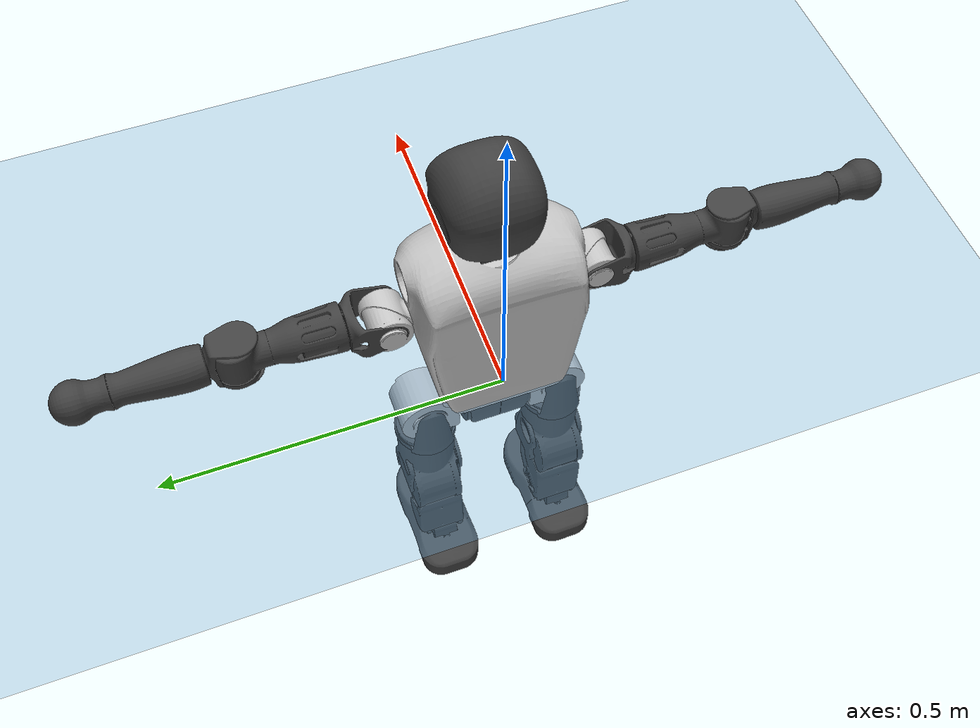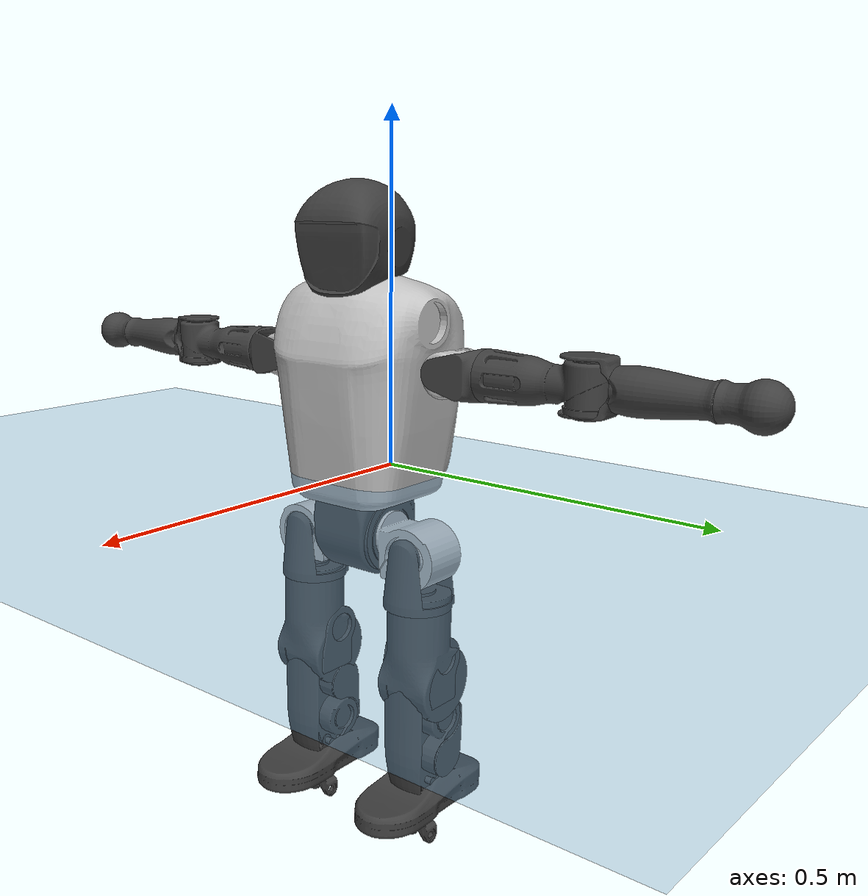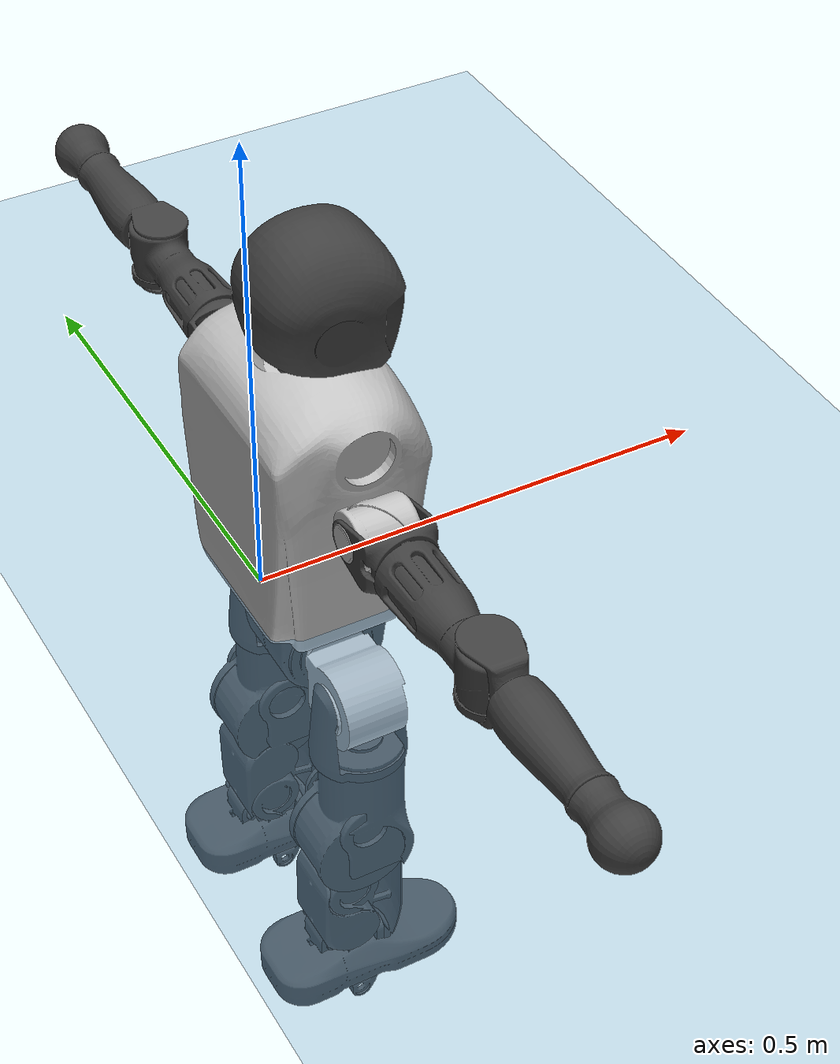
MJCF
<mujoco model="T1">
  <compiler angle="radian" assetdir="assets" balanceinertia="true" inertiafromgeom="false"/>

  <option timestep="0.005" density="1.2" viscosity="2e-05"/>

  <size nkey="1"/>

  <visual>
    <quality shadowsize="8192"/>
    <map shadowclip="0.5"/>
  </visual>

  <default>
    <default class="/">
      <joint armature="0.01" damping="0.01" frictionloss="0.1"/>
      <geom contype="0" conaffinity="0" group="1" solref="-1000 -80"/>
      <site size="0.01 0.005 0.005" group="5"/>
      <general forcelimited="true" biastype="affine" gainprm="25" biasprm="0 -25 -0.6"/>
      <default class="t1">
        <geom rgba="0.25 0.25 0.25 1"/>
        <default class="visual">
          <geom type="mesh" group="2"/>
        </default>
        <default class="collision">
          <geom group="3"/>
        </default>
        <default class="foot">
          <geom size="0.1115 0.05 0.015" type="box" condim="6" group="4" priority="1" solimp="0.015 1 0.015"/>
        </default>
        <default class="reward_collision_sphere">
          <geom group="5" rgba="1 0 0 1"/>
        </default>
      </default>
    </default>
  </default>

  <asset>
    <texture type="skybox" colorspace="auto" name="//unnamed_texture_0" builtin="gradient" rgb1="0.95 0.95 0.95" rgb2="0.95 0.95 0.95" width="100" height="600"/>
    <texture type="2d" colorspace="auto" name="texplane" builtin="checker" rgb1="0.345 0.575 0.748" rgb2="0.345 0.575 0.748" markrgb="1 1 1" width="512" height="512"/>
    <material name="MatPlane" class="/" texture="texplane" texuniform="true" texrepeat="2 2" specular="0.9"/>
    <mesh name="Trunk" class="/" file="Trunk.stl"/>
    <mesh name="H1" class="/" file="H1.stl"/>
    <mesh name="H2" class="/" file="H2.stl"/>
    <mesh name="AL1" class="/" file="AL1.stl"/>
    <mesh name="AL2" class="/" file="AL2.stl"/>
    <mesh name="AL3" class="/" file="AL3.stl"/>
    <mesh name="left_hand_link" class="/" file="left_hand_link.stl"/>
    <mesh name="AR1" class="/" file="AR1.stl"/>
    <mesh name="AR2" class="/" file="AR2.stl"/>
    <mesh name="AR3" class="/" file="AR3.stl"/>
    <mesh name="right_hand_link" class="/" file="right_hand_link.stl"/>
    <mesh name="Waist" class="/" file="Waist.stl"/>
    <mesh name="Hip_Pitch_Left" class="/" file="Hip_Pitch_Left.stl"/>
    <mesh name="Hip_Roll_Left" class="/" file="Hip_Roll_Left.stl"/>
    <mesh name="Hip_Yaw_Left" class="/" file="Hip_Yaw_Left.stl"/>
    <mesh name="Shank_Left" class="/" file="Shank_Left.stl"/>
    <mesh name="Ankle_Cross_Left" class="/" file="Ankle_Cross_Left.stl"/>
    <mesh name="left_foot_link" class="/" file="left_foot_link.stl"/>
    <mesh name="Hip_Pitch_Right" class="/" file="Hip_Pitch_Right.stl"/>
    <mesh name="Hip_Roll_Right" class="/" file="Hip_Roll_Right.stl"/>
    <mesh name="Hip_Yaw_Right" class="/" file="Hip_Yaw_Right.stl"/>
    <mesh name="Shank_Right" class="/" file="Shank_Right.stl"/>
    <mesh name="Ankle_Cross_Right" class="/" file="Ankle_Cross_Right.stl"/>
    <mesh name="right_foot_link" class="/" file="right_foot_link.stl"/>
  </asset>

  <worldbody>
    <geom name="floor" class="/" size="100 100 0.125" type="plane" group="0" material="MatPlane"/>
    <light name="toplight_shadow" class="/" pos="0 0 5" dir="0.0990148 0.0990148 -0.990148" type="directional" ambient="0.04 0.04 0.04" diffuse="0.55 0.55 0.55" specular="0.12 0.12 0.12"/>
    <light name="toplight_fill" class="/" pos="0 0 5" dir="0.0990148 0.0990148 -0.990148" type="directional" castshadow="false" ambient="0.04 0.04 0.04" diffuse="0.3 0.3 0.3" specular="0.08 0.08 0.08"/>
    <body name="trunk" childclass="t1" pos="0.000510326 -0.000101802 0.000866364" quat="1 3.02098e-05 5.40669e-05 0.000288765">
      <inertial pos="0.0503702 -0.00141779 0.072202" quat="0.999805 0.010368 -0.016602 0.00276492" mass="7.75524" diaginertia="0.063893 0.0648343 0.00998759"/>
      <joint name="//unnamed_joint_0" type="free" armature="0" damping="0" frictionloss="0"/>
      <geom name="//unnamed_geom_1" class="visual" rgba="0.76 0.76 0.76 1" mesh="Trunk"/>
      <geom name="//unnamed_geom_2" class="collision" size="0.0648109 0.0864145 0.129622" pos="0.0557223 0 0.0843834" type="box"/>
      <geom name="//unnamed_geom_3" class="reward_collision_sphere" size="0.0993767" pos="0.0557223 0 0.0703195"/>
      <geom name="//unnamed_geom_4" class="reward_collision_sphere" size="0.0129622" pos="0.0557223 0.0816455 0"/>
      <geom name="//unnamed_geom_5" class="reward_collision_sphere" size="0.0129622" pos="0.0557223 -0.0816455 0"/>
      <geom name="//unnamed_geom_6" class="reward_collision_sphere" size="0.0129622" pos="0.0557223 0.102777 0.126575"/>
      <geom name="//unnamed_geom_7" class="reward_collision_sphere" size="0.0129622" pos="0.0557223 -0.102777 0.126575"/>
      <site name="imu" pos="-0.00860765 0.000548287 0.0138305" size="0.00864145"/>
      <camera name="track" pos="0 -1.92107 0" quat="0.707107 0.707107 0 0" mode="trackcom"/>
      <camera name="ego_camera" pos="0.113302 0 0.295342" quat="-0.5 -0.5 0.5 0.5"/>
      <body name="H1" pos="0.0541893 -0.00255207 0.171205" quat="0.999999 -0.000145467 -0.000944672 -0.00071951">
        <inertial pos="-0.000958204 -0.00311437 0.0385837" quat="0.768861 -0.0140227 -0.0083185 0.639208" mass="0.279454" diaginertia="0.000163747 0.000182101 2.54994e-05"/>
        <joint name="AAHead_yaw" pos="0 0 0" axis="-0.00123873 -0.00304396 0.999995" range="-1.51983 1.609" armature="0.00962018" damping="0.0198328" frictionloss="0.0758828"/>
        <geom name="//unnamed_geom_8" class="visual" mesh="H1"/>
        <body name="H2" pos="-0.00142114 0.00056252 0.0418525" quat="1 -0.000439771 0.00027601 5.04149e-05">
          <inertial pos="0.0051575 0.000212426 0.0711535" quat="0.987285 0.117065 -0.0682635 -0.0830879" mass="0.395186" diaginertia="0.00144117 0.00150751 0.000289256"/>
          <joint name="Head_pitch" pos="0 0 0" axis="-5.22769e-05 -0.999931 0.0117607" stiffness="0.00554651" range="-1.21383 0.384135" armature="0.00852499" damping="0" frictionloss="0.0881235"/>
          <geom name="//unnamed_geom_9" class="visual" mesh="H2"/>
          <geom name="//unnamed_geom_10" class="collision" size="0.0691316" pos="0.00928705 0 0.0773515"/>
          <geom name="//unnamed_geom_11" class="reward_collision_sphere" size="0.0777731" pos="0.0185741 0 0.0703195"/>
        </body>
      </body>
      <body name="AL1" pos="0.0528674 0.102317 0.154028" quat="1 0.000698615 -0.000666855 0.000142994">
        <inertial pos="0.00226322 0.045833 -0.000705927" quat="0.501401 0.506756 -0.500186 0.491538" mass="0.329045" diaginertia="0.000915674 0.00104612 5.14435e-05"/>
        <joint name="Left_Shoulder_Pitch" pos="0 0 0" axis="0.0124276 0.999922 -0.00140132" stiffness="0.0076883" range="-3.30303 1.18038" armature="0.00939602" damping="0.0150115" frictionloss="0.0853766"/>
        <geom name="//unnamed_geom_12" class="visual" rgba="0.76 0.76 0.76 1" mesh="AL1"/>
        <body name="AL2" pos="0.0033246 0.0450578 0.00245228" quat="1 0.000713216 -0.000404446 0.000197321">
          <inertial pos="0.00695428 0.0376834 -0.0011518" quat="0.48662 0.511592 -0.493044 0.508314" mass="0.0994287" diaginertia="0.000274286 0.000282857 2.94142e-05"/>
          <joint name="Left_Shoulder_Roll" pos="0 0 0" axis="-0.999898 0.0115675 -0.00837367" range="-1.61528 1.71031" armature="0.00977146" damping="0.0144319" frictionloss="0.0745831"/>
          <geom name="//unnamed_geom_13" class="visual" mesh="AL2"/>
          <body name="AL3" pos="0.003716 0.0580351 0.00145837" quat="0.999999 0.000206252 0.000783139 -0.000798637">
            <inertial pos="0.000373439 0.0818013 -0.000111136" quat="0.705801 0.708405 -0.00219675 -0.00154005" mass="0.650585" diaginertia="0.00883513 0.010298 0.000102353"/>
            <joint name="Left_Elbow_Pitch" pos="0 0 0" axis="0.00504595 -0.999976 0.00472758" stiffness="0.0201673" range="-2.32624 2.24379" armature="0.00824469" damping="0.0114544" frictionloss="0.0821423"/>
            <geom name="//unnamed_geom_14" class="visual" mesh="AL3"/>
            <geom name="//unnamed_geom_15" class="collision" size="0.0259244 0.0648109" pos="0 0.0480268 0" quat="0.707105 0.707108 0 0" type="cylinder"/>
            <geom name="//unnamed_geom_16" class="reward_collision_sphere" size="0.0311092"/>
            <body name="left_hand_link" pos="0.000872144 0.139889 0.00266151" quat="1 2.89666e-05 0.000385668 6.23334e-06">
              <inertial pos="-3.40737e-05 0.10281 0.000888801" quat="0.707589 0.706624 0.000868274 -0.000681468" mass="0.217015" diaginertia="0.00597689 0.00675458 3.67219e-05"/>
              <joint name="Left_Elbow_Yaw" pos="0 0 0" axis="-0.00215428 0.000937687 0.999997" range="-2.43789 0.0126357" armature="0.00849333" damping="0.00272355" frictionloss="0.0790068"/>
              <geom name="//unnamed_geom_17" class="visual" mesh="left_hand_link"/>
              <geom name="//unnamed_geom_18" class="collision" size="0.0259244 0.0756127" pos="0 0.12487 0" quat="0.707105 0.707108 0 0" type="cylinder"/>
              <geom name="//unnamed_geom_19" class="reward_collision_sphere" size="0.0432073"/>
              <geom name="//unnamed_geom_20" class="reward_collision_sphere" size="0.0302451" pos="0 0.105659 0"/>
              <geom name="//unnamed_geom_21" class="reward_collision_sphere" size="0.0302451" pos="0 0.206515 0"/>
            </body>
          </body>
        </body>
      </body>
      <body name="AR1" pos="0.053185 -0.100255 0.155042" quat="0.999999 -0.000244199 0.000965844 0.000835051">
        <inertial pos="-0.0017635 -0.0452262 0.00130785" quat="0.503413 0.495596 -0.504673 0.496251" mass="0.351493" diaginertia="0.000931483 0.00102258 5.0593e-05"/>
        <joint name="Right_Shoulder_Pitch" pos="0 0 0" axis="-0.0141254 -0.9999 0.00117394" range="-1.24545 3.27992" armature="0.00897671" damping="0.00903567" frictionloss="0.0859993"/>
        <geom name="//unnamed_geom_22" class="visual" rgba="0.76 0.76 0.76 1" mesh="AR1"/>
        <body name="AR2" pos="0.000713338 -0.0439662 -0.000817802" quat="0.999999 0.00127499 0.000264506 -0.000308108">
          <inertial pos="0.00112187 -0.0335423 -0.00149548" quat="0.505634 0.493195 -0.518088 0.482367" mass="0.108443" diaginertia="0.000287995 0.000299304 3.04674e-05"/>
          <joint name="Right_Shoulder_Roll" pos="0 0 0" axis="-0.999999 -0.000991562 0.000158907" stiffness="0.00636895" range="-1.69056 1.58703" armature="0.00822497" damping="0.0197869" frictionloss="0.0884579"/>
          <geom name="//unnamed_geom_23" class="visual" mesh="AR2"/>
          <body name="AR3" pos="-0.00257415 -0.0599294 -7.9173e-05" quat="1 -0.0001445 0.000233487 -7.08922e-05">
            <inertial pos="-0.000282255 -0.0844517 -0.000573836" quat="0.709327 0.704795 -0.000132799 0.0109032" mass="0.636533" diaginertia="0.0086018 0.01071 0.000103702"/>
            <joint name="Right_Elbow_Pitch" pos="0 0 0" axis="-0.00151966 0.999994 -0.00305221" range="-2.26897 2.27859" armature="0.007952" damping="0.0164982" frictionloss="0.0819921"/>
            <geom name="//unnamed_geom_24" class="visual" mesh="AR3"/>
            <geom name="//unnamed_geom_25" class="collision" size="0.0259244 0.0648109" pos="0 -0.0480268 0" quat="0.707105 0.707108 0 0" type="cylinder"/>
            <geom name="//unnamed_geom_26" class="reward_collision_sphere" size="0.0311092"/>
            <body name="right_hand_link" pos="6.64099e-05 -0.142326 0.00250702" quat="0.999999 0.00111707 -0.000267228 -0.000710247">
              <inertial pos="0.0014499 -0.105162 -0.000157621" quat="0.706769 0.707443 -3.54793e-05 0.00163003" mass="0.218832" diaginertia="0.00559566 0.00668185 3.7405e-05"/>
              <joint name="Right_Elbow_Yaw" pos="0 0 0" axis="0.00248115 -0.00623182 0.999978" range="-0.0163521 2.47546" armature="0.00788562" damping="0.00384949" frictionloss="0.0874048"/>
              <geom name="//unnamed_geom_27" class="visual" mesh="right_hand_link"/>
              <geom name="//unnamed_geom_28" class="collision" size="0.0259244 0.0756127" pos="0 -0.12487 0" quat="0.707105 0.707108 0 0" type="cylinder"/>
              <geom name="//unnamed_geom_29" class="reward_collision_sphere" size="0.0432073"/>
              <geom name="//unnamed_geom_30" class="reward_collision_sphere" size="0.0302451" pos="0 -0.105659 0"/>
              <geom name="//unnamed_geom_31" class="reward_collision_sphere" size="0.0302451" pos="0 -0.206515 0"/>
            </body>
          </body>
        </body>
      </body>
      <body name="Waist" pos="0.0599666 0.0031656 -0.0819131" quat="1 -0.000190252 -0.000141151 0.000728325">
        <inertial pos="0.000834267 -0.000532287 0.00564748" quat="0.98394 -0.00566229 -0.177803 0.0147004" mass="1.68695" diaginertia="0.00366908 0.00433713 0.000821807"/>
        <joint name="Waist" pos="0 0 0" axis="-0.0088619 0.00422468 0.999952" range="-1.6066 1.62152" armature="0.0085389" damping="0.0246919" frictionloss="0.0843041"/>
        <geom name="//unnamed_geom_32" class="visual" mesh="Waist"/>
        <body name="Hip_Pitch_Left" pos="0.00130012 0.101682 0.000966775" quat="1 5.13253e-06 -0.00051116 0.000232893">
          <inertial pos="-0.000775694 -0.00859298 -0.0129421" quat="0.975205 0.220945 0.0125193 -0.00129825" mass="0.62709" diaginertia="0.00120121 0.0011313 0.00020836"/>
          <joint name="Left_Hip_Pitch" pos="0 0 0" axis="0.0107853 0.999811 -0.0161484" stiffness="0.00795685" range="-1.78146 1.61114" armature="0.0087632" damping="0.0287716" frictionloss="0.0863727"/>
          <geom name="//unnamed_geom_33" class="visual" rgba="0.76 0.76 0.76 1" mesh="Hip_Pitch_Left"/>
          <body name="Hip_Roll_Left" pos="0.00288697 -0.00108473 -0.0159173" quat="1 7.8915e-05 -8.96266e-05 -6.41835e-05">
            <inertial pos="0.00254711 0.00102153 -0.0408379" quat="0.708028 -0.0017118 -0.00780396 0.70614" mass="0.247007" diaginertia="0.00119529 0.00122962 8.73635e-05"/>
            <joint name="Left_Hip_Roll" pos="0 0 0" axis="-0.999996 0.0019421 -0.00216376" range="-1.51636 0.154619" armature="0.00883784" damping="0.00923655" frictionloss="0.0900786"/>
            <geom name="//unnamed_geom_34" class="visual" mesh="Hip_Roll_Left"/>
            <geom name="//unnamed_geom_35" class="reward_collision_sphere" size="0.047528"/>
            <body name="Hip_Yaw_Left" pos="-0.00192063 0.001283 -0.0560348" quat="1 0.00016686 -0.00080405 -0.000364874">
              <inertial pos="-0.00630522 -0.000631803 -0.0630842" quat="0.700891 -0.0383959 -0.0346746 0.711389" mass="1.3543" diaginertia="0.0180594 0.0212067 0.000460343"/>
              <joint name="Left_Hip_Yaw" pos="0 0 0" axis="0.00104348 -0.000809158 -0.999999" stiffness="0.0101276" range="-1.0086 1.04064" armature="0.00886837" damping="0" frictionloss="0.0856995"/>
              <geom name="//unnamed_geom_36" class="visual" mesh="Hip_Yaw_Left"/>
              <geom name="//unnamed_geom_37" class="collision" size="0.0432073 0.0691316" type="cylinder"/>
              <body name="Shank_Left" pos="-0.0114232 -0.00248394 -0.0956038" quat="0.999999 0.00115068 -0.000120498 9.92657e-05">
                <inertial pos="-0.00486598 0.0027656 -0.0865051" quat="0.997777 -0.00226394 -0.0217226 0.062956" mass="1.13707" diaginertia="0.0229018 0.0285049 0.000310778"/>
                <joint name="Left_Knee_Pitch" pos="0 0 0" axis="0.00408208 0.999989 -0.00241776" range="0.0503555 2.32846" armature="0.009752" damping="0.0106078" frictionloss="0.0873851"/>
                <geom name="//unnamed_geom_38" class="visual" mesh="Shank_Left"/>
                <geom name="//unnamed_geom_39" class="collision" size="0.0432073 0.0648109" pos="0 0 -0.0843834" type="cylinder"/>
                <geom name="//unnamed_geom_40" class="reward_collision_sphere" size="0.0561694"/>
                <body name="Ankle_Cross_Left" pos="-0.00277192 -0.00154525 -0.195523" quat="0.999999 -0.000612117 0.000481415 -0.000731776">
                  <inertial pos="-0.00429562 0.00229496 -0.00375445" quat="0.442887 0.552906 0.558387 0.431682" mass="0.047721" diaginertia="1.996e-05 2.04399e-05 1.88692e-06"/>
                  <joint name="Left_Ankle_Pitch" pos="0 0 0" axis="0.0103874 0.99992 0.00718029" range="-0.826755 0.394626" armature="0.00756517" damping="0.0282739" frictionloss="0.0862069"/>
                  <geom name="//unnamed_geom_41" class="visual" mesh="Ankle_Cross_Left"/>
                  <body name="left_foot_link" pos="-0.000206492 -0.00149429 -0.00738687" quat="0.999999 0.000903491 0.000497819 0.000800797">
                    <inertial pos="-0.00260996 0.000737872 -0.00436979" quat="-0.00173231 0.622526 0.00319509 0.782591" mass="0.425593" diaginertia="0.00189451 0.00194821 0.000386738"/>
                    <joint name="Left_Ankle_Roll" pos="0 0 0" axis="-0.999881 0.0124131 -0.00920156" stiffness="0.00539973" range="-0.478298 0.387654" armature="0.00880969" damping="0" frictionloss="0.0895602"/>
                    <geom name="//unnamed_geom_42" class="visual" mesh="left_foot_link"/>
                    <geom name="left_foot" class="foot" size="0.107831 0.0343847 0.014304" pos="0.00928705 0 -0.0105479"/>
                    <geom name="//unnamed_geom_44" class="reward_collision_sphere" size="0.0449356" pos="0.00928705 0 -0.0105479"/>
                    <geom name="//unnamed_geom_45" class="reward_collision_sphere" size="0.0259244" pos="0.088227 -0.0220923 -0.0105479"/>
                    <geom name="//unnamed_geom_46" class="reward_collision_sphere" size="0.0259244" pos="-0.0650094 -0.0220923 -0.0105479"/>
                    <site name="left_foot" class="foot" pos="0.00928705 0 -0.0105479" size="0.00864145"/>
                  </body>
                </body>
              </body>
            </body>
          </body>
        </body>
        <body name="Hip_Pitch_Right" pos="-0.00306187 -0.100841 -0.00249812" quat="0.999999 -0.000534252 -0.00027616 0.00111912">
          <inertial pos="0.000219177 0.0101795 -0.0135062" quat="0.973598 -0.227767 0.0144029 -0.00467029" mass="0.67848" diaginertia="0.00128708 0.00122714 0.000224026"/>
          <joint name="Right_Hip_Pitch" pos="0 0 0" axis="0.000840274 -0.999991 0.00420602" range="-1.55166 1.79012" armature="0.00879606" damping="0" frictionloss="0.0965777"/>
          <geom name="//unnamed_geom_47" class="visual" rgba="0.76 0.76 0.76 1" mesh="Hip_Pitch_Right"/>
          <body name="Hip_Roll_Right" pos="-0.000647175 -0.0023157 -0.0127783" quat="1 -3.69959e-05 -0.000754313 0.000646345">
            <inertial pos="-0.000332132 0.00192581 -0.0393855" quat="0.708619 -0.00282144 -0.00497001 0.705568" mass="0.244102" diaginertia="0.00116152 0.0012575 8.75806e-05"/>
            <joint name="Right_Hip_Roll" pos="0 0 0" axis="-0.999981 -0.00452982 0.00412165" range="-0.208651 1.59041" armature="0.00861514" damping="0.018034" frictionloss="0.0854398"/>
            <geom name="//unnamed_geom_48" class="visual" mesh="Hip_Roll_Right"/>
            <geom name="//unnamed_geom_49" class="reward_collision_sphere" size="0.047528"/>
            <body name="Hip_Yaw_Right" pos="0.000540312 -0.000811984 -0.0602666" quat="1 8.42665e-05 -3.68286e-05 5.72593e-05">
              <inertial pos="-0.00400459 -0.00254638 -0.0606357" quat="0.718596 -0.0268511 -0.0282743 0.694334" mass="1.44479" diaginertia="0.0176506 0.0201017 0.000459043"/>
              <joint name="Right_Hip_Yaw" pos="0 0 0" axis="-0.00603697 0.0175116 -0.999828" stiffness="0.0145348" range="-0.967308 1.04354" armature="0.00865572" damping="0.0133452" frictionloss="0.0885432"/>
              <geom name="//unnamed_geom_50" class="visual" mesh="Hip_Yaw_Right"/>
              <geom name="//unnamed_geom_51" class="collision" size="0.0432073 0.0691316" type="cylinder"/>
              <body name="Shank_Right" pos="-0.0124273 0.00162974 -0.0972678" quat="1 -0.000196912 6.77274e-05 -0.000172143">
                <inertial pos="-0.00538577 0.00199696 -0.0881063" quat="0.999276 -0.00332071 -0.0199274 -0.0322431" mass="1.11082" diaginertia="0.0240829 0.0281054 0.000328114"/>
                <joint name="Right_Knee_Pitch" pos="0 0 0" axis="0.0044353 -0.999894 -0.0138413" stiffness="0.00636674" range="-2.39305 0.0220692" armature="0.00870608" damping="0.0210105" frictionloss="0.0982425"/>
                <geom name="//unnamed_geom_52" class="visual" mesh="Shank_Right"/>
                <geom name="//unnamed_geom_53" class="collision" size="0.0432073 0.0648109" pos="0 0 -0.0843834" type="cylinder"/>
                <geom name="//unnamed_geom_54" class="reward_collision_sphere" size="0.0561694"/>
                <body name="Ankle_Cross_Right" pos="-0.000433701 -6.68859e-05 -0.198366" quat="1 -5.15273e-07 -4.20175e-06 3.70875e-07">
                  <inertial pos="-0.00329037 -0.000760234 -0.00518492" quat="0.43902 0.559627 0.542145 0.44739" mass="0.0463292" diaginertia="1.96735e-05 2.07112e-05 1.89151e-06"/>
                  <joint name="Right_Ankle_Pitch" pos="0 0 0" axis="-0.00465222 -0.999947 -0.00916198" stiffness="0.0175303" range="-0.339497 0.84102" armature="0.00899083" damping="0.000847382" frictionloss="0.0944607"/>
                  <geom name="//unnamed_geom_55" class="visual" mesh="Ankle_Cross_Right"/>
                  <body name="right_foot_link" pos="0.00114433 -0.000687661 -0.00704002" quat="0.999999 -3.61044e-05 0.000254019 0.00117032">
                    <inertial pos="0.00235921 -0.000667049 -0.0065432" quat="0.00217047 0.625447 -0.000964074 0.780263" mass="0.459464" diaginertia="0.00188683 0.00203745 0.000376063"/>
                    <joint name="Right_Ankle_Roll" pos="0 0 0" axis="-0.999992 -0.00391872 0.000597206" range="-0.478784 0.492662" armature="0.00806265" damping="0.00946535" frictionloss="0.0878311"/>
                    <geom name="//unnamed_geom_56" class="visual" mesh="right_foot_link"/>
                    <geom name="right_foot" class="foot" size="0.108831 0.0396907 0.0128406" pos="0.00928705 0 -0.0105479"/>
                    <geom name="//unnamed_geom_58" class="reward_collision_sphere" size="0.0345658"/>
                    <geom name="//unnamed_geom_59" class="reward_collision_sphere" size="0.0259244" pos="0.00928705 0 -0.0105479"/>
                    <geom name="//unnamed_geom_60" class="reward_collision_sphere" size="0.0259244" pos="0.088227 0.0220923 -0.0105479"/>
                    <geom name="//unnamed_geom_61" class="reward_collision_sphere" size="0.0259244" pos="-0.0650094 0.0220923 -0.0105479"/>
                    <site name="right_foot" class="foot" pos="0.00928705 0 -0.0105479" size="0.00864145"/>
                  </body>
                </body>
              </body>
            </body>
          </body>
        </body>
      </body>
    </body>
  </worldbody>

  <contact>
    <pair class="/" geom1="floor" geom2="left_foot" name="//unnamed_contact_0"/>
    <pair class="/" geom1="floor" geom2="right_foot" name="//unnamed_contact_1"/>
  </contact>

  <actuator>
    <general name="AAHead_yaw" class="/" joint="AAHead_yaw" forcerange="-5.44931 5.44931" gainprm="22.5514" biasprm="0 -22.5514 -0.562902"/>
    <general name="Head_pitch" class="/" joint="Head_pitch" forcerange="-6.25109 6.25109" gainprm="22.5514" biasprm="0 -22.5514 -0.562902"/>
    <general name="Left_Shoulder_Pitch" class="/" joint="Left_Shoulder_Pitch" forcerange="-16.1857 16.1857" gainprm="22.5514" biasprm="0 -22.5514 -0.562902"/>
    <general name="Left_Shoulder_Roll" class="/" joint="Left_Shoulder_Roll" forcerange="-15.8496 15.8496" gainprm="22.5514" biasprm="0 -22.5514 -0.562902"/>
    <general name="Left_Elbow_Pitch" class="/" joint="Left_Elbow_Pitch" forcerange="-15.8502 15.8502" gainprm="22.5514" biasprm="0 -22.5514 -0.562902"/>
    <general name="Left_Elbow_Yaw" class="/" joint="Left_Elbow_Yaw" forcerange="-14.7367 14.7367" gainprm="22.5514" biasprm="0 -22.5514 -0.562902"/>
    <general name="Right_Shoulder_Pitch" class="/" joint="Right_Shoulder_Pitch" forcerange="-16.0885 16.0885" gainprm="22.5514" biasprm="0 -22.5514 -0.562902"/>
    <general name="Right_Shoulder_Roll" class="/" joint="Right_Shoulder_Roll" forcerange="-15.3856 15.3856" gainprm="22.5514" biasprm="0 -22.5514 -0.562902"/>
    <general name="Right_Elbow_Pitch" class="/" joint="Right_Elbow_Pitch" forcerange="-14.1672 14.1672" gainprm="22.5514" biasprm="0 -22.5514 -0.562902"/>
    <general name="Right_Elbow_Yaw" class="/" joint="Right_Elbow_Yaw" forcerange="-15.6305 15.6305" gainprm="22.5514" biasprm="0 -22.5514 -0.562902"/>
    <general name="Waist" class="/" joint="Waist" forcerange="-28.6384 28.6384" gainprm="22.5514" biasprm="0 -22.5514 -0.562902"/>
    <general name="Left_Hip_Pitch" class="/" joint="Left_Hip_Pitch" forcerange="-41.584 41.584" gainprm="22.5514" biasprm="0 -22.5514 -0.562902"/>
    <general name="Left_Hip_Roll" class="/" joint="Left_Hip_Roll" forcerange="-27.9357 27.9357" gainprm="22.5514" biasprm="0 -22.5514 -0.562902"/>
    <general name="Left_Hip_Yaw" class="/" joint="Left_Hip_Yaw" forcerange="-28.7178 28.7178" gainprm="22.5514" biasprm="0 -22.5514 -0.562902"/>
    <general name="Left_Knee_Pitch" class="/" joint="Left_Knee_Pitch" forcerange="-51.6466 51.6466" gainprm="22.5514" biasprm="0 -22.5514 -0.562902"/>
    <general name="Left_Ankle_Pitch" class="/" joint="Left_Ankle_Pitch" forcerange="-18.3212 18.3212" gainprm="22.5514" biasprm="0 -22.5514 -0.562902"/>
    <general name="Left_Ankle_Roll" class="/" joint="Left_Ankle_Roll" forcerange="-12.959 12.959" gainprm="22.5514" biasprm="0 -22.5514 -0.562902"/>
    <general name="Right_Hip_Pitch" class="/" joint="Right_Hip_Pitch" forcerange="-37.5016 37.5016" gainprm="22.5514" biasprm="0 -22.5514 -0.562902"/>
    <general name="Right_Hip_Roll" class="/" joint="Right_Hip_Roll" forcerange="-28.03 28.03" gainprm="22.5514" biasprm="0 -22.5514 -0.562902"/>
    <general name="Right_Hip_Yaw" class="/" joint="Right_Hip_Yaw" forcerange="-28.6301 28.6301" gainprm="22.5514" biasprm="0 -22.5514 -0.562902"/>
    <general name="Right_Knee_Pitch" class="/" joint="Right_Knee_Pitch" forcerange="-56.0604 56.0604" gainprm="22.5514" biasprm="0 -22.5514 -0.562902"/>
    <general name="Right_Ankle_Pitch" class="/" joint="Right_Ankle_Pitch" forcerange="-15.6296 15.6296" gainprm="22.5514" biasprm="0 -22.5514 -0.562902"/>
    <general name="Right_Ankle_Roll" class="/" joint="Right_Ankle_Roll" forcerange="-13.474 13.474" gainprm="22.5514" biasprm="0 -22.5514 -0.562902"/>
  </actuator>

  <sensor>
    <gyro site="imu" name="imu_angular_velocity"/>
    <velocimeter site="imu" name="imu_linear_velocity"/>
    <framelinvel objtype="site" objname="left_foot" name="left_foot_global_linear_velocity"/>
    <framelinvel objtype="site" objname="right_foot" name="right_foot_global_linear_velocity"/>
  </sensor>

  <keyframe>
    <key name="home" qpos="0 0 0.6385 1 0 0 0 0 0 0 1.4 0 -0.4 0 -1.4 0 0.4 0 -0.4 0 0 0.8 -0.4 0 0.4 0 0 -0.8 0.4 0"/>
  </keyframe>
</mujoco>
